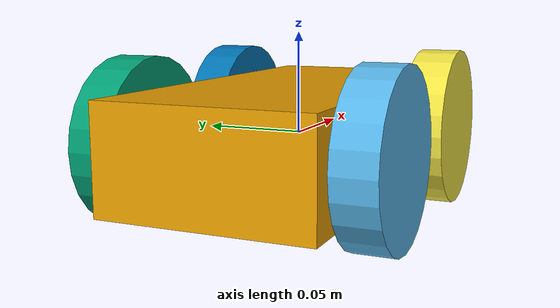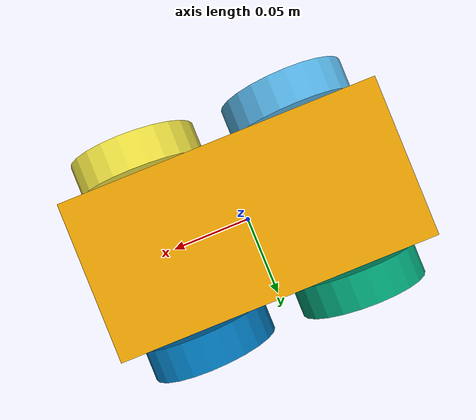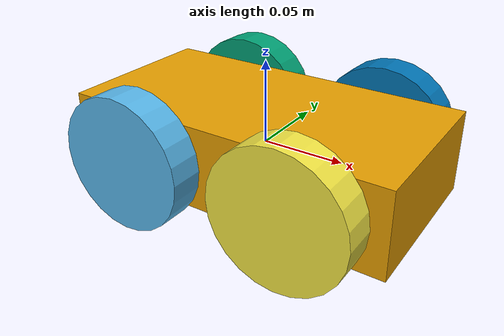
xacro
<?xml version="1.0" ?>
<robot name="/home/diogo/catkin_ws/src/robots/carbot/carbot_description/urdf/carbot.urdf" version="1.0">
  <link name="base_link">
    <visual>
      <geometry>
        <box size="0.2 0.1 0.05"/>
      </geometry>
    </visual>
    <collision>
      <geometry>
        <box size="0.2 0.1 0.05"/>
      </geometry>
    </collision>
  </link>
  <joint name="wheel4" type="continuous">
    <origin xyz="-0.05 -0.06 0.0" rpy="1.5708 0.0 0.0"/>
    <axis xyz="0.0 -4e-06 -1.0"/>
    <parent link="base_link"/>
    <child link="wheel4"/>
    <limit effort="10.0" lower="0" upper="0" velocity="10.0"/>
  </joint>
  <link name="wheel4">
    <visual>
      <geometry>
        <cylinder radius="0.04" length="0.02"/>
      </geometry>
    </visual>
    <collision>
      <geometry>
        <cylinder radius="0.04" length="0.02"/>
      </geometry>
    </collision>
  </link>
  <joint name="wheel3" type="continuous">
    <origin xyz="-0.05 0.06 0.0" rpy="1.5708 0.0 0.0"/>
    <axis xyz="0.0 -4e-06 -1.0"/>
    <parent link="base_link"/>
    <child link="wheel3"/>
    <limit effort="10.0" lower="0" upper="0" velocity="10.0"/>
  </joint>
  <link name="wheel3">
    <visual>
      <geometry>
        <cylinder radius="0.04" length="0.02"/>
      </geometry>
    </visual>
    <collision>
      <geometry>
        <cylinder radius="0.04" length="0.02"/>
      </geometry>
    </collision>
  </link>
  <joint name="wheel2" type="continuous">
    <origin xyz="0.05 -0.06 0.0" rpy="1.5708 0.0 0.0"/>
    <axis xyz="0.0 -4e-06 -1.0"/>
    <parent link="base_link"/>
    <child link="wheel2"/>
    <limit effort="10.0" lower="0" upper="0" velocity="10.0"/>
  </joint>
  <link name="wheel2">
    <visual>
      <geometry>
        <cylinder radius="0.04" length="0.02"/>
      </geometry>
    </visual>
    <collision>
      <geometry>
        <cylinder radius="0.04" length="0.02"/>
      </geometry>
    </collision>
  </link>
  <joint name="wheel1" type="continuous">
    <origin xyz="0.05 0.06 0.0" rpy="1.5708 0.0 0.0"/>
    <axis xyz="0.0 -4e-06 -1.0"/>
    <parent link="base_link"/>
    <child link="wheel1"/>
    <limit effort="10.0" lower="0" upper="0" velocity="10.0"/>
  </joint>
  <link name="wheel1">
    <visual>
      <geometry>
        <cylinder radius="0.04" length="0.02"/>
      </geometry>
    </visual>
    <collision>
      <geometry>
        <cylinder radius="0.04" length="0.02"/>
      </geometry>
    </collision>
  </link>
  <link name="ds_right"/>
  <joint name="base_link_ds_right_joint" type="fixed">
    <origin xyz="0.105087 -0.032507 0.0" rpy="0.0 0.0 -0.3"/>
    <parent link="base_link"/>
    <child link="ds_right"/>
  </joint>
  <link name="ds_left"/>
  <joint name="base_link_ds_left_joint" type="fixed">
    <origin xyz="0.105087 0.032507 0.0" rpy="0.0 0.0 0.3"/>
    <parent link="base_link"/>
    <child link="ds_left"/>
  </joint>
  <link name="accelerometer"/>
  <joint name="base_link_accelerometer_joint" type="fixed">
    <origin xyz="0.0062609983603613365 0.0062412830525937655 0.034674001004381415" rpy="0.00999999999999596 -0.009999999999995996 -0.00999999999999596"/>
    <parent link="base_link"/>
    <child link="accelerometer"/>
  </joint>
  <link name="gyroscope"/>
  <joint name="base_link_gyroscope_joint" type="fixed">
    <origin xyz="0.0 0.0 0.03" rpy="0.0 0.0 0.0"/>
    <parent link="base_link"/>
    <child link="gyroscope"/>
  </joint>
</robot>
